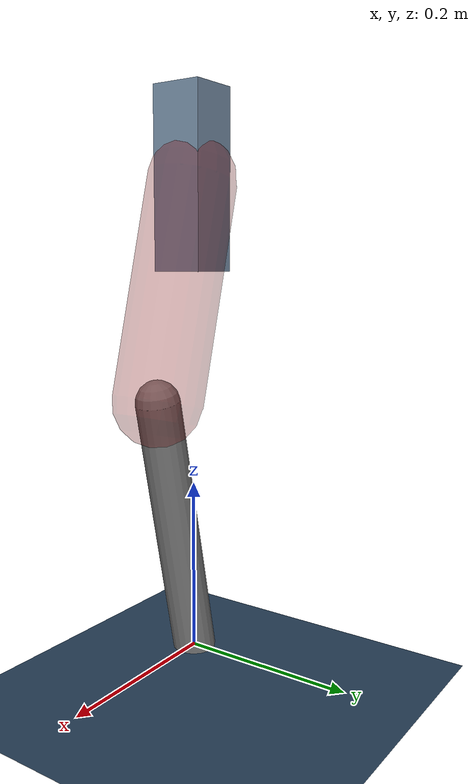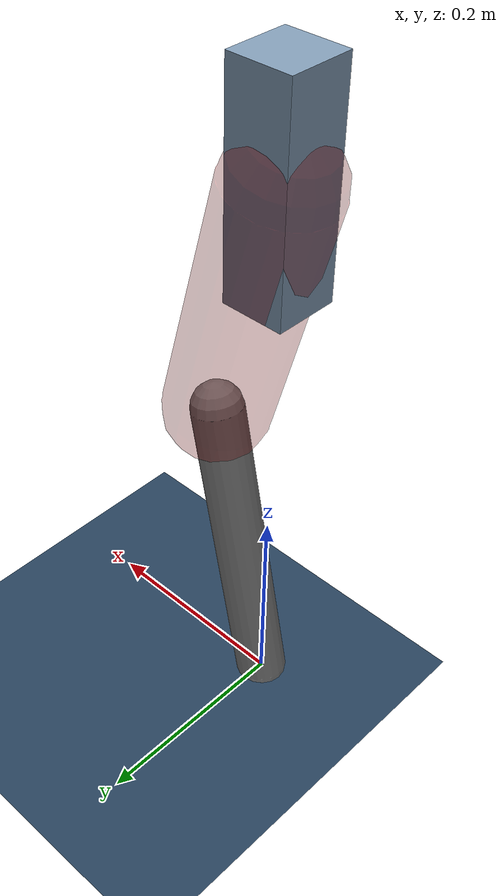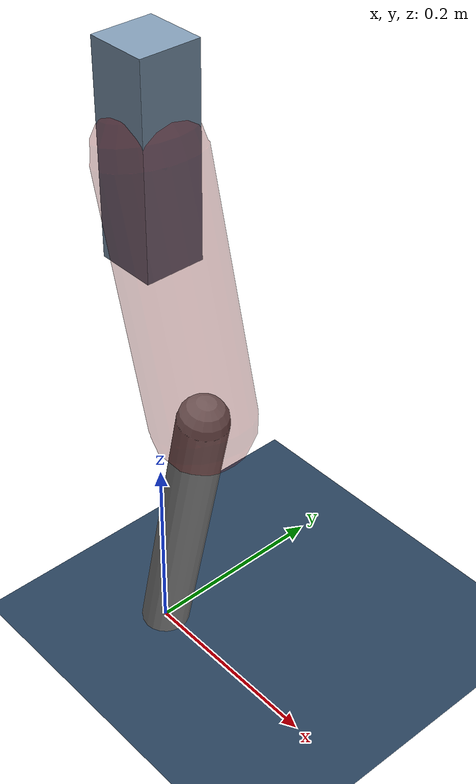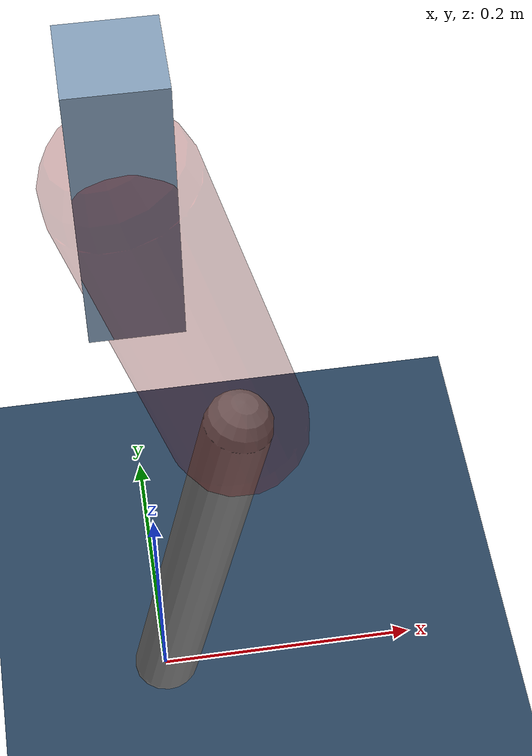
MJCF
<mujoco model="Hopper2D">
	<compiler inertiafromgeom="true" angle="radian" />
	<option timestep="0.001" integrator="implicit" cone="elliptic" solver="Newton" tolerance="1e-10" />

	<default>
		<geom contype="1" conaffinity="1" condim="3" friction="2 0.005 0.0001" solref="0.005 1" />
		<joint limited="true" damping="0.1" />
	</default>

	<asset>
		<texture name="skybox" type="skybox" builtin="gradient" rgb1=".4 .6 .8" rgb2="0 0 0" width="800" height="800" />
		<texture name="grid" type="2d" builtin="checker" rgb1=".1 .2 .3" rgb2=".2 .3 .4" width="300" height="300" mark="edge" markrgb=".2 .3 .4" />
		<material name="ground" texture="grid" texrepeat="1 1" texuniform="true" reflectance="0.1" />
		<material name="leg" rgba="0.5 0.6 0.7 1" />
	</asset>

	<worldbody>

		<geom name="floor" type="plane" size="5 5 0.25" material="ground" />

		<light directional="false" diffuse="0.8 0.8 0.8" specular="0.3 0.3 0.3" pos="0 0 2" dir="0 0 -1" />
		<light mode="targetbodycom" target="base" directional="false" diffuse="0.8 0.8 0.8" specular="0.3 0.3 0.3" pos="0 0 2" dir="0 0 -1" />

		<camera name="fixed" pos="0 -2 1" xyaxes="1 0 0 0 0 1" />
		<camera name="tracking" mode="trackcom" pos="0 -3 1" />

		<body name="root" pos="0 0 0.545440955832429">
			<joint name="slide_x" type="slide" axis="1 0 0" range="-100 100" />
			<joint name="slide_z" type="slide" axis="0 0 1" range="0 10" />

			<body name="base" pos="0 0 0">
				<geom name="torso" type="box" size="0.03 0.03 0.1" mass="3.99" material="leg" />

				<body name="link1" pos="0 0 0" euler="0 1.3090111171911514 0">
					<joint type="hinge" axis="0 -1 0" pos="0 0 0" name="hinge1" limited="true" range="-3.14 3.14" stiffness="0" damping="0.1" />
					<geom name="thigh" type="capsule" fromto="0 0 0 0.2491547428682348 0 0" size="0.05" rgba="0.5 0 0 0.3" mass="0.8542023314574105" />

					<body name="link2" pos="0.2491547428682348 0 0" euler="0 0.47028477683200465 0">
						<joint type="hinge" axis="0 -1 0" pos="0 0 0" name="hinge2" limited="true" range="-3.14 3.14" stiffness="0" damping="0.1" />
						<geom name="shank" type="capsule" fromto="0 0 0 0.3115217947465343 0 0" size="0.025" mass="0.4928174357972275" />

					</body>
				</body>
			</body>
		</body>
	</worldbody>

	<actuator>
		<motor name="torque1" joint="hinge1" ctrlrange="-137.53282819950158 137.53282819950158" ctrllimited="true" gear="1" />
		<motor name="torque2" joint="hinge2" ctrlrange="-277.791054341448 277.791054341448" ctrllimited="true" gear="1" />
	</actuator>
</mujoco>
